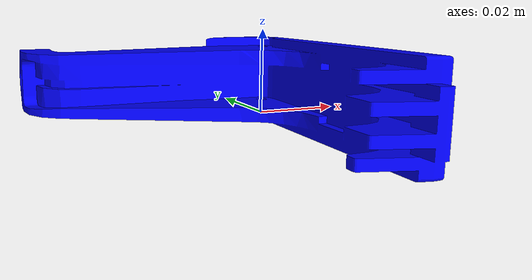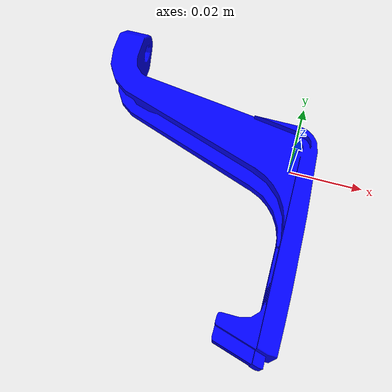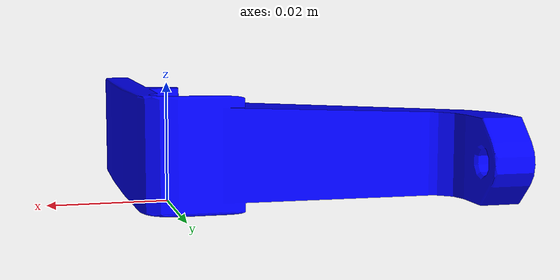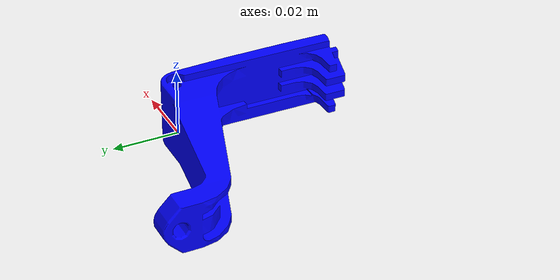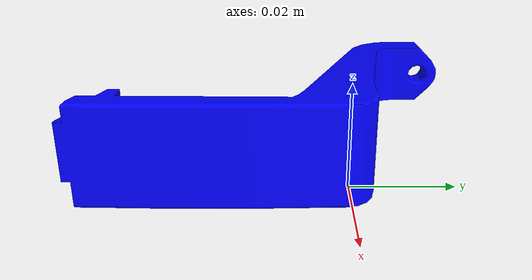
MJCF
<mujoco model="push_latch_handle">
  <default>
    <default class="visual">
      <geom group="2" type="mesh" contype="0" conaffinity="0"/>
    </default>
    <default class="collision">
      <geom group="3" type="mesh"/>
    </default>
  </default>
  <asset>
    <material name="mtl_push_latch_handle" specular="0.20000000000000004" shininess="1.0" rgba="0.00000000 0.00000000 1.00000000 1.0"/>
    <mesh file="push_latch_handle.obj"/>
  </asset>
  <worldbody>
    <body name="push_latch_handle">
      <geom material="mtl_push_latch_handle" mesh="push_latch_handle" class="visual"/>
      <geom mesh="push_latch_handle" class="collision"/>
    </body>
  </worldbody>
</mujoco>
